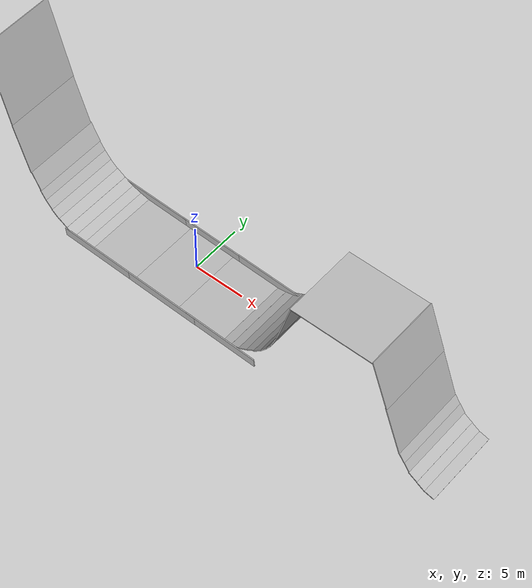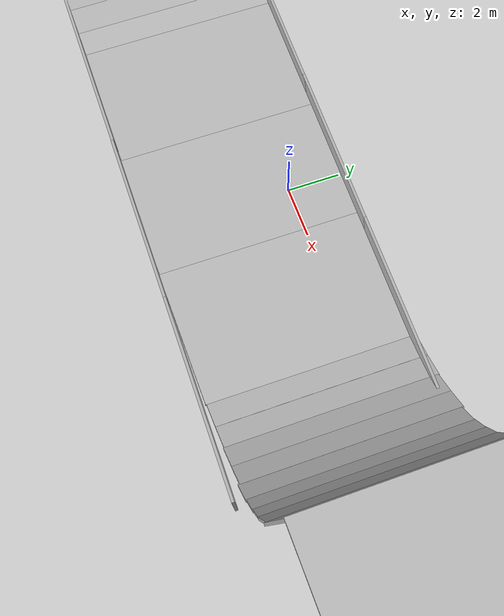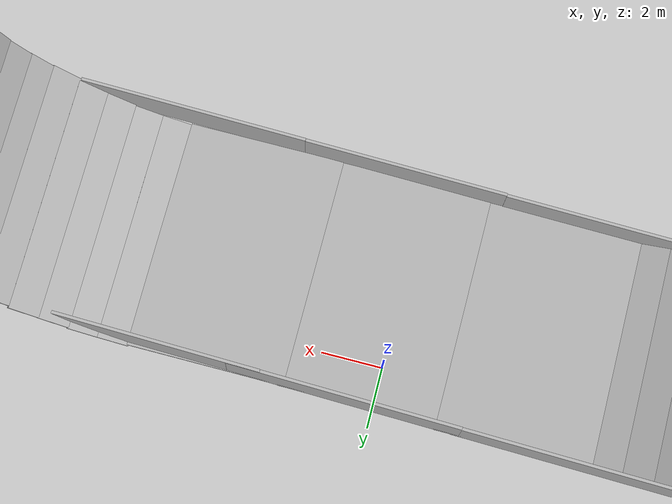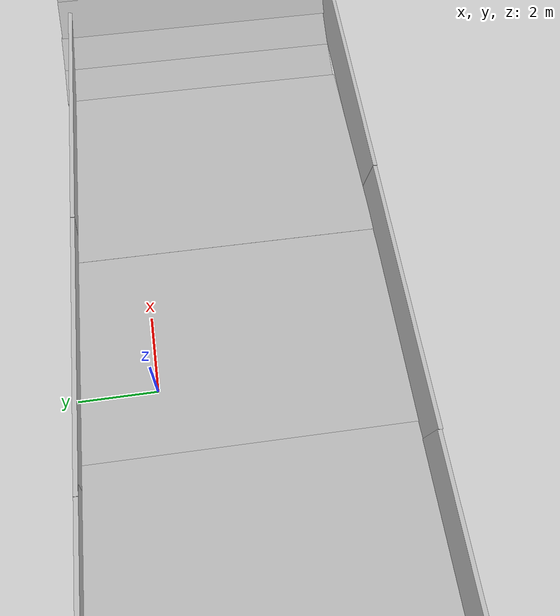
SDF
<sdf version="1.5">
 <world name="default">
  <scene><grid>false</grid></scene>
  <include><uri>model://ground_plane</uri></include>
  <include><uri>model://sun</uri></include>
  <include><uri>model://car</uri></include>
  <scene>
   <grid>0</grid>
   <ambient>0.4 0.4 0.4 1</ambient>
   <background>0.7 0.7 0.7 1</background>
   <shadows>1</shadows>
  </scene>
  <scene>
   <grid>0</grid>
   <ambient>0.4 0.4 0.4 1</ambient>
   <background>0.7 0.7 0.7 1</background>
   <shadows>1</shadows>
  </scene>
  <scene>
   <grid>0</grid>
   <ambient>0.4 0.4 0.4 1</ambient>
   <background>0.7 0.7 0.7 1</background>
   <shadows>1</shadows>
  </scene>
  <scene>
   <grid>0</grid>
   <ambient>0.4 0.4 0.4 1</ambient>
   <background>0.7 0.7 0.7 1</background>
   <shadows>1</shadows>
  </scene>
  <scene>
   <grid>0</grid>
   <ambient>0.4 0.4 0.4 1</ambient>
   <background>0.7 0.7 0.7 1</background>
   <shadows>1</shadows>
  </scene>
  <model name="box1">
   <static>1</static>
   <pose>-15.7971 -1.93894 16.0347 0 1.3 0</pose>
   <link name="link">
    <collision name="collision"><geometry><box><size>8 7.34 0.1</size></box></geometry></collision>
    <visual name="visual"><geometry><box><size>8 7.34 0.1</size></box></geometry></visual>
   </link>
  </model>
  <model name="box2">
   <static>1</static>
   <pose>-13.9546 -1.96365 9.86468 0 1.25 0</pose>
   <link name="link">
    <collision name="collision"><geometry><box><size>5 7.34 0.1</size></box></geometry></collision>
    <visual name="visual"><geometry><box><size>5 7.34 0.1</size></box></geometry></visual>
   </link>
  </model>
  <model name="box3">
   <static>1</static>
   <pose>-12.7345 -1.90568 6.70199 0 1.07879 0</pose>
   <link name="link">
    <collision name="collision"><geometry><box><size>2 7.34 0.1</size></box></geometry></collision>
    <visual name="visual"><geometry><box><size>2 7.34 0.1</size></box></geometry></visual>
   </link>
  </model>
  <model name="box4">
   <static>1</static>
   <pose>-12.0288 -1.95298 5.45892 0 1 0</pose>
   <link name="link">
    <collision name="collision"><geometry><box><size>1 7.34 0.1</size></box></geometry></collision>
    <visual name="visual"><geometry><box><size>1 7.34 0.1</size></box></geometry></visual>
   </link>
  </model>
  <gravity>0 0 -9.8</gravity>
  <magnetic_field>6e-06 2.3e-05 -4.2e-05</magnetic_field>
  <atmosphere type="adiabatic"/>
  <physics type="ode">
   <max_step_size>0.001</max_step_size>
   <real_time_factor>1</real_time_factor>
   <real_time_update_rate>1000</real_time_update_rate>
  </physics>
  <spherical_coordinates>
   <surface_model>EARTH_WGS84</surface_model>
   <latitude_deg>0</latitude_deg>
   <longitude_deg>0</longitude_deg>
   <elevation>0</elevation>
   <heading_deg>0</heading_deg>
  </spherical_coordinates>
  <model name="box4_clone">
   <static>1</static>
   <pose>-11.4372 -1.95416 4.6597 0 0.866937 0</pose>
   <link name="link">
    <collision name="collision"><geometry><box><size>1 7.34 0.1</size></box></geometry></collision>
    <visual name="visual"><geometry><box><size>1 7.34 0.1</size></box></geometry></visual>
   </link>
  </model>
  <model name="box4_clone_clone">
   <static>1</static>
   <pose>-10.7516 -1.97335 3.95794 0 0.731359 0</pose>
   <link name="link">
    <collision name="collision"><geometry><box><size>1 7.34 0.1</size></box></geometry></collision>
    <visual name="visual"><geometry><box><size>1 7.34 0.1</size></box></geometry></visual>
   </link>
  </model>
  <model name="box4_clone_clone_clone">
   <static>1</static>
   <pose>-9.98301 -1.94929 3.37654 0 0.581043 0</pose>
   <link name="link">
    <collision name="collision"><geometry><box><size>1 7.34 0.1</size></box></geometry></collision>
    <visual name="visual"><geometry><box><size>1 7.34 0.1</size></box></geometry></visual>
   </link>
  </model>
  <model name="box4_clone_clone_clone_clone">
   <static>1</static>
   <pose>-9.09861 -1.95741 2.88893 0 0.434816 0</pose>
   <link name="link">
    <collision name="collision"><geometry><box><size>1 7.34 0.1</size></box></geometry></collision>
    <visual name="visual"><geometry><box><size>1 7.34 0.1</size></box></geometry></visual>
   </link>
  </model>
  <model name="box4_clone_clone_clone_clone_clone">
   <static>1</static>
   <pose>-8.18948 -1.90732 2.50992 0 0.351337 0</pose>
   <link name="link">
    <collision name="collision"><geometry><box><size>1 7.34 0.1</size></box></geometry></collision>
    <visual name="visual"><geometry><box><size>1 7.34 0.1</size></box></geometry></visual>
   </link>
  </model>
  <model name="box4_clone_clone_clone_clone_clone_clone">
   <static>1</static>
   <pose>-7.31607 -1.92122 2.23645 0 0.252904 0</pose>
   <link name="link">
    <collision name="collision"><geometry><box><size>1 7.34 0.1</size></box></geometry></collision>
    <visual name="visual"><geometry><box><size>1 7.34 0.1</size></box></geometry></visual>
   </link>
  </model>
  <model name="box2_clone">
   <static>1</static>
   <pose>-4.45984 -1.96575 2.0894 -0.000283 0.012967 -0.003341</pose>
   <link name="link">
    <collision name="collision"><geometry><box><size>5 7.34 0.1</size></box></geometry></collision>
    <visual name="visual"><geometry><box><size>5 7.34 0.1</size></box></geometry></visual>
   </link>
  </model>
  <model name="box2_clone_clone">
   <static>1</static>
   <pose>0.497845 -2.07541 2.04695 -0.000283 0.004307 -0.003338</pose>
   <link name="link">
    <collision name="collision"><geometry><box><size>5 7.34 0.1</size></box></geometry></collision>
    <visual name="visual"><geometry><box><size>5 7.34 0.1</size></box></geometry></visual>
   </link>
  </model>
  <model name="box1_clone">
   <static>1</static>
   <pose>-878.821 5062.71 16.2056 0 1.3 0</pose>
   <link name="link">
    <collision name="collision"><geometry><box><size>8 7.34 0.1</size></box></geometry></collision>
    <visual name="visual"><geometry><box><size>8 7.34 0.1</size></box></geometry></visual>
   </link>
  </model>
  <model name="box2_clone_clone_clone">
   <static>1</static>
   <pose>5.29422 -2.11278 2.02777 -0.000283 0.004307 -0.003338</pose>
   <link name="link">
    <collision name="collision"><geometry><box><size>5 7.34 0.1</size></box></geometry></collision>
    <visual name="visual"><geometry><box><size>5 7.34 0.1</size></box></geometry></visual>
   </link>
  </model>
  <model name="box4_clone_clone_clone_clone_clone_clone_clone">
   <static>1</static>
   <pose>8.22064 -2.08831 2.12816 0 -0.259839 0</pose>
   <link name="link">
    <collision name="collision"><geometry><box><size>1 7.34 0.1</size></box></geometry></collision>
    <visual name="visual"><geometry><box><size>1 7.34 0.1</size></box></geometry></visual>
   </link>
  </model>
  <model name="box4_clone_clone_clone_clone_clone_clone_clone_clone">
   <static>1</static>
   <pose>9.12728 -2.08747 2.41192 0 -0.362159 0</pose>
   <link name="link">
    <collision name="collision"><geometry><box><size>1 7.34 0.1</size></box></geometry></collision>
    <visual name="visual"><geometry><box><size>1 7.34 0.1</size></box></geometry></visual>
   </link>
  </model>
  <model name="box4_clone_clone_clone_clone_clone_clone_clone_clone_clone">
   <static>1</static>
   <pose>9.99014 -2.11227 2.84344 0 -0.558533 0</pose>
   <link name="link">
    <collision name="collision"><geometry><box><size>1 7.34 0.1</size></box></geometry></collision>
    <visual name="visual"><geometry><box><size>1 7.34 0.1</size></box></geometry></visual>
   </link>
  </model>
  <model name="box4_clone_clone_clone_clone_clone_clone_clone_clone_clone_clone">
   <static>1</static>
   <pose>10.8041 -2.11744 3.39677 0 -0.634426 0</pose>
   <link name="link">
    <collision name="collision"><geometry><box><size>1 7.34 0.1</size></box></geometry></collision>
    <visual name="visual"><geometry><box><size>1 7.34 0.1</size></box></geometry></visual>
   </link>
  </model>
  <model name="box4_clone_clone_clone_clone_clone_clone_clone_clone_clone_clone_clone">
   <static>1</static>
   <pose>11.548 -2.17842 4.01308 0 -0.756697 0</pose>
   <link name="link">
    <collision name="collision"><geometry><box><size>1 7.34 0.1</size></box></geometry></collision>
    <visual name="visual"><geometry><box><size>1 7.34 0.1</size></box></geometry></visual>
   </link>
  </model>
  <model name="box4_clone_clone_clone_clone_clone_clone_clone_clone_clone_clone_clone_clone">
   <static>1</static>
   <pose>12.1799 -2.15575 4.69531 0 -0.90249 0</pose>
   <link name="link">
    <collision name="collision"><geometry><box><size>1 7.34 0.1</size></box></geometry></collision>
    <visual name="visual"><geometry><box><size>1 7.34 0.1</size></box></geometry></visual>
   </link>
  </model>
  <model name="box4_clone_clone_clone_clone_clone_clone_clone_clone_clone_clone_clone_clone_clone">
   <static>1</static>
   <pose>12.6634 -2.14306 5.38227 0 -1.01454 0</pose>
   <link name="link">
    <collision name="collision"><geometry><box><size>1 7.34 0.1</size></box></geometry></collision>
    <visual name="visual"><geometry><box><size>1 7.34 0.1</size></box></geometry></visual>
   </link>
  </model>
  <model name="box3_clone">
   <static>1</static>
   <pose>13.294 -2.15474 6.73099 0 -1.1916 0</pose>
   <link name="link">
    <collision name="collision"><geometry><box><size>2 7.34 0.1</size></box></geometry></collision>
    <visual name="visual"><geometry><box><size>2 7.34 0.1</size></box></geometry></visual>
   </link>
  </model>
  <model name="box2_clone_0">
   <static>1</static>
   <pose>14.2652 -2.21399 9.82165 3.14159 1.29269 3.14159</pose>
   <link name="link">
    <collision name="collision"><geometry><box><size>5 7.34 0.1</size></box></geometry></collision>
    <visual name="visual"><geometry><box><size>5 7.34 0.1</size></box></geometry></visual>
   </link>
  </model>
  <model name="box1_clone_0">
   <static>1</static>
   <pose>18.885 -2.2122 12.2042 3.14159 -0.0069 3.14159</pose>
   <link name="link">
    <collision name="collision"><geometry><box><size>8 7.34 0.1</size></box></geometry></collision>
    <visual name="visual"><geometry><box><size>8 7.34 0.1</size></box></geometry></visual>
   </link>
  </model>
  <model name="box2_clone_1">
   <static>1</static>
   <pose>23.6315 -2.16568 9.86468 0 1.25 0</pose>
   <link name="link">
    <collision name="collision"><geometry><box><size>5 7.34 0.1</size></box></geometry></collision>
    <visual name="visual"><geometry><box><size>5 7.34 0.1</size></box></geometry></visual>
   </link>
  </model>
  <model name="box2_clone_1_clone">
   <static>1</static>
   <pose>25.1396 -2.20261 5.32422 0 1.25 0</pose>
   <link name="link">
    <collision name="collision"><geometry><box><size>5 7.34 0.1</size></box></geometry></collision>
    <visual name="visual"><geometry><box><size>5 7.34 0.1</size></box></geometry></visual>
   </link>
  </model>
  <model name="box4_clone_0">
   <static>1</static>
   <pose>26.1894 -2.1799 2.54431 0 1 0</pose>
   <link name="link">
    <collision name="collision"><geometry><box><size>1 7.34 0.1</size></box></geometry></collision>
    <visual name="visual"><geometry><box><size>1 7.34 0.1</size></box></geometry></visual>
   </link>
  </model>
  <model name="box4_clone_clone_clone_clone_0">
   <static>1</static>
   <pose>27.3996 -2.21148 1.03933 0 0.581043 0</pose>
   <link name="link">
    <collision name="collision"><geometry><box><size>1 7.34 0.1</size></box></geometry></collision>
    <visual name="visual"><geometry><box><size>1 7.34 0.1</size></box></geometry></visual>
   </link>
  </model>
  <model name="box4_clone_clone_clone_clone_0_clone">
   <static>1</static>
   <pose>28.2372 -2.23596 0.49863 0 0.581043 0</pose>
   <link name="link">
    <collision name="collision"><geometry><box><size>1 7.34 0.1</size></box></geometry></collision>
    <visual name="visual"><geometry><box><size>1 7.34 0.1</size></box></geometry></visual>
   </link>
  </model>
  <model name="box4_clone_0_clone">
   <static>1</static>
   <pose>26.7171 -2.15758 1.71936 0 1 0</pose>
   <link name="link">
    <collision name="collision"><geometry><box><size>1 7.34 0.1</size></box></geometry></collision>
    <visual name="visual"><geometry><box><size>1 7.34 0.1</size></box></geometry></visual>
   </link>
  </model>
  <model name="box4_clone_clone_clone_clone_clone_0">
   <static>1</static>
   <pose>29.0898 -2.23318 0.130385 0 0.265796 0</pose>
   <link name="link">
    <collision name="collision"><geometry><box><size>1 7.34 0.1</size></box></geometry></collision>
    <visual name="visual"><geometry><box><size>1 7.34 0.1</size></box></geometry></visual>
   </link>
  </model>
  <model name="box4_clone_clone_clone_clone_clone_clone_clone_clone_clone_clone_clone_0">
   <static>1</static>
   <pose>-6.06959 -5.63747 2.45394 -0.04857 -1.46152 -1.54479</pose>
   <link name="link">
    <collision name="collision"><geometry><box><size>1 7.34 0.1</size></box></geometry></collision>
    <visual name="visual"><geometry><box><size>1 7.34 0.1</size></box></geometry></visual>
   </link>
  </model>
  <model name="box4_clone_clone_clone_clone_clone_clone_clone_clone_clone_clone_clone_0_clone">
   <static>1</static>
   <pose>1.26211 -5.81595 2.43777 -0.04857 -1.46152 -1.54479</pose>
   <link name="link">
    <collision name="collision"><geometry><box><size>1 7.34 0.1</size></box></geometry></collision>
    <visual name="visual"><geometry><box><size>1 7.34 0.1</size></box></geometry></visual>
   </link>
  </model>
  <model name="box4_clone_clone_clone_clone_clone_clone_clone_clone_clone_clone_clone_0_clone_clone">
   <static>1</static>
   <pose>7.72497 -5.96049 2.43172 -0.04857 -1.46152 -1.54479</pose>
   <link name="link">
    <collision name="collision"><geometry><box><size>1 7.34 0.1</size></box></geometry></collision>
    <visual name="visual"><geometry><box><size>1 7.34 0.1</size></box></geometry></visual>
   </link>
  </model>
  <model name="box4_clone_clone_clone_clone_clone_clone_clone_clone_clone_clone_clone_0_clone_clone_0">
   <static>1</static>
   <pose>0.932373 1.52025 2.49696 -0.04857 -1.46152 -1.54479</pose>
   <link name="link">
    <collision name="collision"><geometry><box><size>1 7.34 0.1</size></box></geometry></collision>
    <visual name="visual"><geometry><box><size>1 7.34 0.1</size></box></geometry></visual>
   </link>
  </model>
  <model name="box4_clone_clone_clone_clone_clone_clone_clone_clone_clone_clone_clone_0_clone_clone_0_clone">
   <static>1</static>
   <pose>-6.16488 1.68245 2.49572 -0.04857 -1.46152 -1.54479</pose>
   <link name="link">
    <collision name="collision"><geometry><box><size>1 7.34 0.1</size></box></geometry></collision>
    <visual name="visual"><geometry><box><size>1 7.34 0.1</size></box></geometry></visual>
   </link>
  </model>
  <model name="box4_clone_clone_clone_clone_clone_clone_clone_clone_clone_clone_clone_0_clone_clone_0_clone_0">
   <static>1</static>
   <pose>7.20248 1.37579 2.49696 -0.04857 -1.46152 -1.54479</pose>
   <link name="link">
    <collision name="collision"><geometry><box><size>1 7.34 0.1</size></box></geometry></collision>
    <visual name="visual"><geometry><box><size>1 7.34 0.1</size></box></geometry></visual>
   </link>
  </model>
 </world>
</sdf>

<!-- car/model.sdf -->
<sdf version='1.7'>
    <model name="my_robot">
      <link name='chassis'>
        <pose>0 0 0.15 0 -0 0</pose>
        <inertial>
          <pose>0.1 0 0 0 -0 0</pose>
          <mass>10</mass>
          <inertia>
            <ixx>0.216667</ixx>
            <iyy>0.841667</iyy>
            <izz>1.04167</izz>
            <ixy>0</ixy>
            <ixz>0</ixz>
            <iyz>0</iyz>
          </inertia>
        </inertial>
        <collision name='collision'>
          <geometry>
            <box>
              <size>1 0.5 0.1</size>
            </box>
          </geometry>
          <max_contacts>10</max_contacts>
          <surface>
            <contact>
              <ode/>
            </contact>
            <bounce/>
            <friction>
              <torsional>
                <ode/>
              </torsional>
              <ode/>
            </friction>
          </surface>
        </collision>
        <visual name='visual'>
          <geometry>
            <box>
              <size>1 0.5 0.1</size>
            </box>
          </geometry>
          <material>
            <script>
              <uri>file://media/materials/scripts/gazebo.material</uri>
              <name>Gazebo/Grey</name>
            </script>
          </material>
        </visual>
        <self_collide>0</self_collide>
        <enable_wind>0</enable_wind>
        <kinematic>0</kinematic>
      </link>
      <link name='wheel_front_left'>
        <pose>0.5 0.298 0.15 -1.5708 -0.087266 0</pose>
        <inertial>
          <mass>0.5</mass>
          <inertia>
            <ixx>0.00307917</ixx>
            <iyy>0.00307917</iyy>
            <izz>0.005625</izz>
            <ixy>0</ixy>
            <ixz>0</ixz>
            <iyz>0</iyz>
          </inertia>
          <pose>0 0 0 0 -0 0</pose>
        </inertial>
        <collision name='collision'>
          <geometry>
            <cylinder>
              <radius>0.2</radius>
              <length>0.08</length>
            </cylinder>
          </geometry>
          <max_contacts>10</max_contacts>
          <surface>
            <contact>
              <ode/>
            </contact>
            <bounce/>
            <friction>
              <torsional>
                <ode/>
              </torsional>
              <ode/>
            </friction>
          </surface>
        </collision>
        <visual name='visual'>
          <geometry>
            <cylinder>
              <radius>0.2</radius>
              <length>0.08</length>
            </cylinder>
          </geometry>
          <material>
            <script>
              <uri>file://media/materials/scripts/gazebo.material</uri>
              <name>Gazebo/Black</name>
            </script>
          </material>
        </visual>
        <self_collide>0</self_collide>
        <enable_wind>0</enable_wind>
        <kinematic>0</kinematic>
      </link>
      <joint name='wheel_front_left_steer' type='revolute'>
        <parent>chassis</parent>
        <child>wheel_front_left</child>
        <axis>
          <xyz>0 0 1</xyz>
          <limit>
            <upper>1e+16</upper>
            <lower>-1e+16</lower>
          </limit>
          <dynamics>
            <spring_reference>0</spring_reference>
            <spring_stiffness>0</spring_stiffness>
          </dynamics>
        </axis>
      </joint>
      <link name='wheel_front_right'>
        <pose>0.5 -0.298 0.15 -1.5708 -0.087266 0</pose>
        <inertial>
          <mass>0.5</mass>
          <inertia>
            <ixx>0.00307917</ixx>
            <iyy>0.00307917</iyy>
            <izz>0.005625</izz>
            <ixy>0</ixy>
            <ixz>0</ixz>
            <iyz>0</iyz>
          </inertia>
          <pose>0 0 0 0 -0 0</pose>
        </inertial>
        <collision name='collision'>
          <geometry>
            <cylinder>
              <radius>0.2</radius>
              <length>0.08</length>
            </cylinder>
          </geometry>
          <max_contacts>10</max_contacts>
          <surface>
            <contact>
              <ode/>
            </contact>
            <bounce/>
            <friction>
              <torsional>
                <ode/>
              </torsional>
              <ode/>
            </friction>
          </surface>
        </collision>
        <visual name='visual'>
          <geometry>
            <cylinder>
              <radius>0.2</radius>
              <length>0.08</length>
            </cylinder>
          </geometry>
          <material>
            <script>
              <uri>file://media/materials/scripts/gazebo.material</uri>
              <name>Gazebo/Black</name>
            </script>
          </material>
        </visual>
        <self_collide>0</self_collide>
        <enable_wind>0</enable_wind>
        <kinematic>0</kinematic>
      </link>
      <joint name='wheel_front_right_steer' type='revolute'>
        <parent>chassis</parent>
        <child>wheel_front_right</child>
        <axis>
          <xyz>0 0 1</xyz>
          <limit>
            <upper>1e+16</upper>
            <lower>-1e+16</lower>
          </limit>
          <dynamics>
            <spring_reference>0</spring_reference>
            <spring_stiffness>0</spring_stiffness>
          </dynamics>
        </axis>
      </joint>
      <link name='wheel_rear_left'>
        <pose>-0.5 0.298 0.15 -1.5708 0 0</pose>
        <inertial>
          <mass>0.5</mass>
          <inertia>
            <ixx>0.00307917</ixx>
            <iyy>0.00307917</iyy>
            <izz>0.005625</izz>
            <ixy>0</ixy>
            <ixz>0</ixz>
            <iyz>0</iyz>
          </inertia>
          <pose>0 0 0 0 -0 0</pose>
        </inertial>
        <collision name='collision'>
          <geometry>
            <cylinder>
              <radius>0.2</radius>
              <length>0.08</length>
            </cylinder>
          </geometry>
          <max_contacts>10</max_contacts>
          <surface>
            <contact>
              <ode/>
            </contact>
            <bounce/>
            <friction>
              <torsional>
                <ode/>
              </torsional>
              <ode/>
            </friction>
          </surface>
        </collision>
        <visual name='visual'>
          <geometry>
            <cylinder>
              <radius>0.2</radius>
              <length>0.08</length>
            </cylinder>
          </geometry>
          <material>
            <script>
              <uri>file://media/materials/scripts/gazebo.material</uri>
              <name>Gazebo/Black</name>
            </script>
          </material>
        </visual>
        <self_collide>0</self_collide>
        <enable_wind>0</enable_wind>
        <kinematic>0</kinematic>
      </link>
      <joint name='left_wheel_back' type='revolute'>
        <parent>chassis</parent>
        <child>wheel_rear_left</child>
        <axis>
          <xyz>0 0 1</xyz>
          <limit>
            <lower>-1e+16</lower>
            <upper>1e+16</upper>
          </limit>
          <dynamics>
            <spring_reference>0</spring_reference>
            <spring_stiffness>0</spring_stiffness>
          </dynamics>
        </axis>
      </joint>
      <link name='wheel_rear_right'>
        <pose>-0.5 -0.298 0.15 -1.5708 0 0</pose>
        <inertial>
          <mass>0.5</mass>
          <inertia>
            <ixx>0.00307917</ixx>
            <iyy>0.00307917</iyy>
            <izz>0.005625</izz>
            <ixy>0</ixy>
            <ixz>0</ixz>
            <iyz>0</iyz>
          </inertia>
          <pose>0 0 0 0 -0 0</pose>
        </inertial>
        <collision name='collision'>
          <geometry>
            <cylinder>
              <radius>0.2</radius>
              <length>0.08</length>
            </cylinder>
          </geometry>
          <max_contacts>10</max_contacts>
          <surface>
            <contact>
              <ode/>
            </contact>
            <bounce/>
            <friction>
              <torsional>
                <ode/>
              </torsional>
              <ode/>
            </friction>
          </surface>
        </collision>
        <visual name='visual'>
          <geometry>
            <cylinder>
              <radius>0.2</radius>
              <length>0.08</length>
            </cylinder>
          </geometry>
          <material>
            <script>
              <uri>file://media/materials/scripts/gazebo.material</uri>
              <name>Gazebo/Black</name>
            </script>
          </material>
        </visual>
        <self_collide>0</self_collide>
        <enable_wind>0</enable_wind>
        <kinematic>0</kinematic>
      </link>
      <joint name='right_wheel_back' type='revolute'>
        <parent>chassis</parent>
        <child>wheel_rear_right</child>
        <axis>
          <xyz>0 0 1</xyz>
          <limit>
            <lower>-1e+16</lower>
            <upper>1e+16</upper>
          </limit>
          <dynamics>
            <spring_reference>0</spring_reference>
            <spring_stiffness>0</spring_stiffness>
          </dynamics>
        </axis>
      </joint>
      <pose>2.7216 -2.1701 0 0 -0 0</pose>
    </model>
</sdf>
